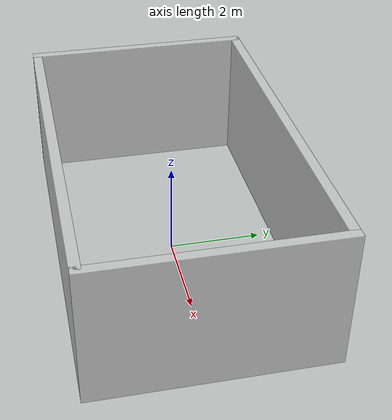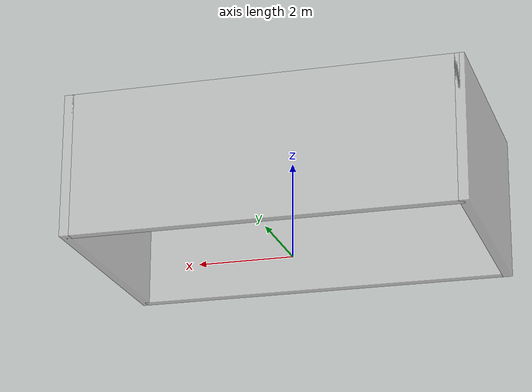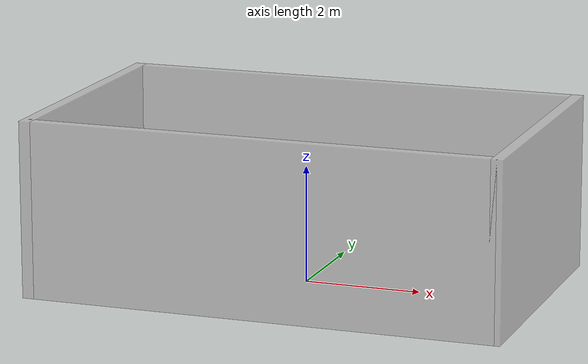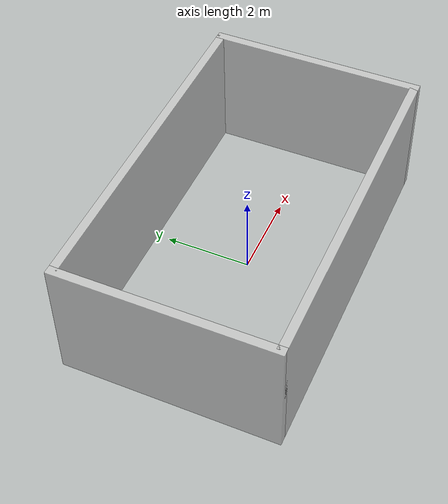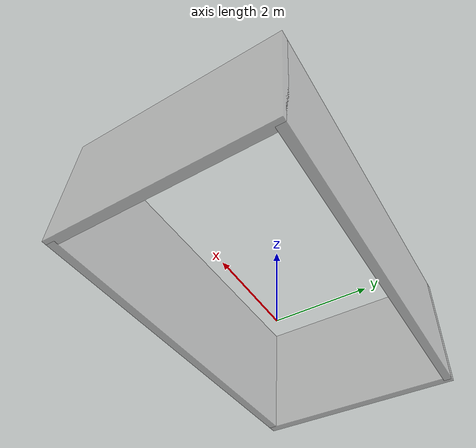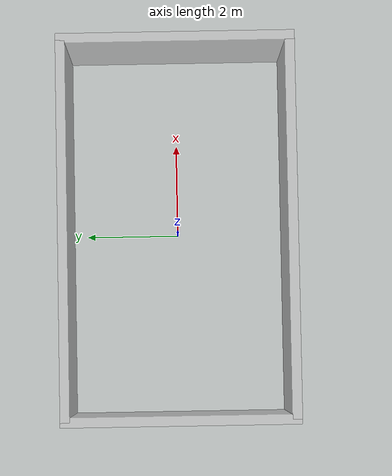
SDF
<sdf version="1.6">
	<model name="walls">
		<static>true</static>
		<pose>0 0 1.5 0 0 0</pose>
		<link name="north_wall">
			<pose>4 0 0 0 0 0</pose>
			<collision name="collision">
				<geometry>
					<box>
            			<size>0.2 5 3</size>
          			</box>
				</geometry>
			</collision>
			<visual name="visual">
				<geometry>
					<box>
            			<size>0.2 5 3</size>
          			</box>
				</geometry>
					<material>
						<ambient>0.8 0.8 0.8 1</ambient>
						<diffuse>0.8 0.8 0.8 1</diffuse>
						<specular>0.8 0.8 0.8 1</specular>
					</material>
					<transparency>0.2</transparency>
			</visual>
		</link>
		<link name="south_wall">
			<pose>-4 0 0 0 0 0</pose>
			<collision name="collision">
				<geometry>
					<box>
            			<size>0.2 5 3</size>
          			</box>
				</geometry>
			</collision>
			<visual name="visual">
				<geometry>
					<box>
            			<size>0.2 5 3</size>
          			</box>
				</geometry>
					<material>
						<ambient>0.8 0.8 0.8 1</ambient>
						<diffuse>0.8 0.8 0.8 1</diffuse>
						<specular>0.8 0.8 0.8 1</specular>
					</material>
					<transparency>0.2</transparency>
			</visual>
		</link>

		<link name="east_wall">
			<pose>0 -2.4 0 0 0 0</pose>
			<collision name="collision">
				<geometry>
					<box>
            			<size>7.1 0.2 3</size>
          			</box>
				</geometry>
			</collision>
			<visual name="visual">
				<geometry>
					<box>
            			<size>8 0.2 3</size>
          			</box>
				</geometry>
					<material>
						<ambient>0.8 0.8 0.8 1</ambient>
						<diffuse>0.8 0.8 0.8 1</diffuse>
						<specular>0.8 0.8 0.8 1</specular>
					</material>
					<transparency>0.2</transparency>
			</visual>
		</link>

		<link name="west_wall">
			<pose>0 2.4 0 0 0 0</pose>
			<collision name="collision">
				<geometry>
					<box>
            			<size>7.1 0.2 3</size>
          			</box>
				</geometry>
			</collision>
			<visual name="visual">
				<geometry>
					<box>
            			<size>8 0.2 3</size>
          			</box>
				</geometry>
					<material>
						<ambient>0.8 0.8 0.8 1</ambient>
						<diffuse>0.8 0.8 0.8 1</diffuse>
						<specular>0.8 0.8 0.8 1</specular>
					</material>
					<transparency>0.2</transparency>

			</visual>
		</link>
	</model>
</sdf>
